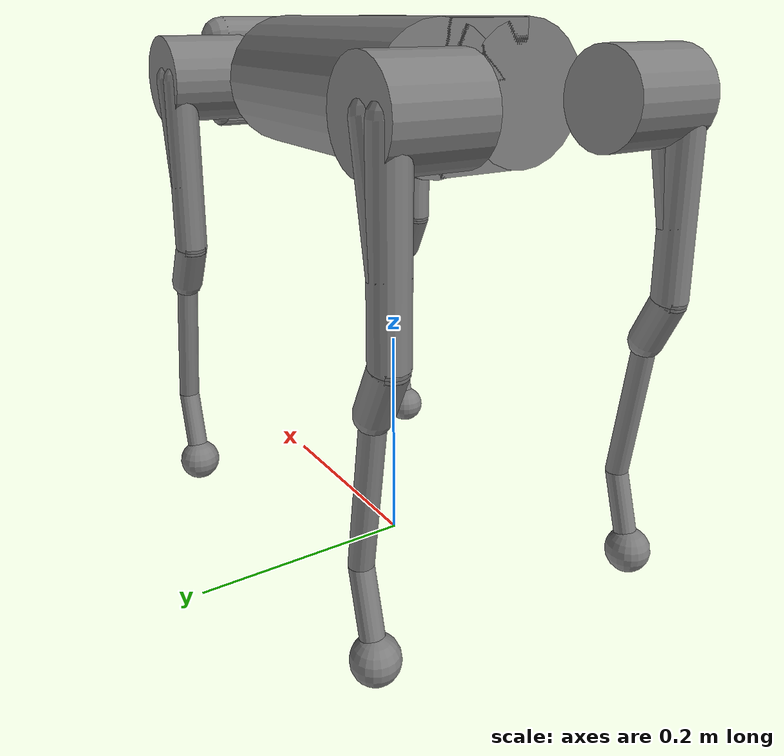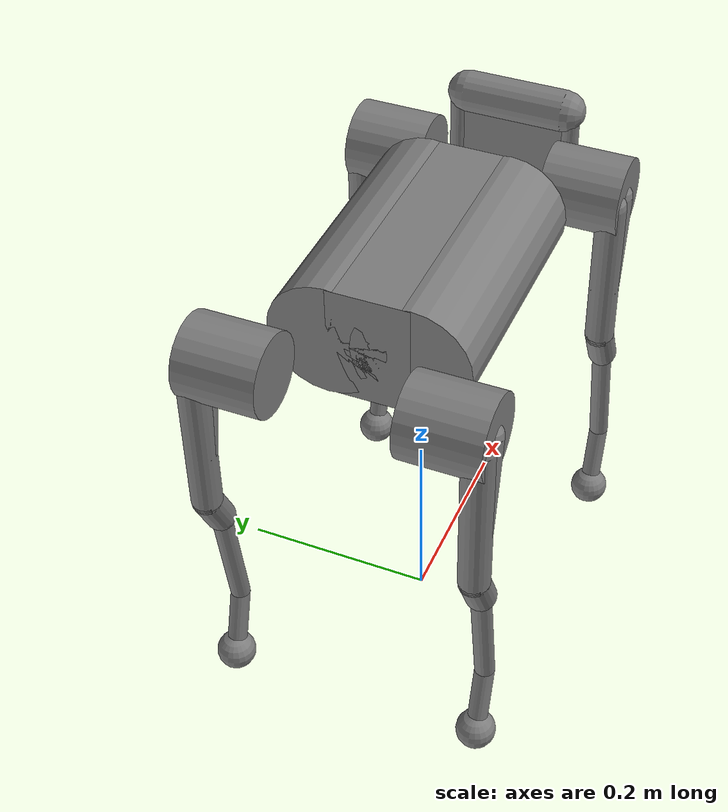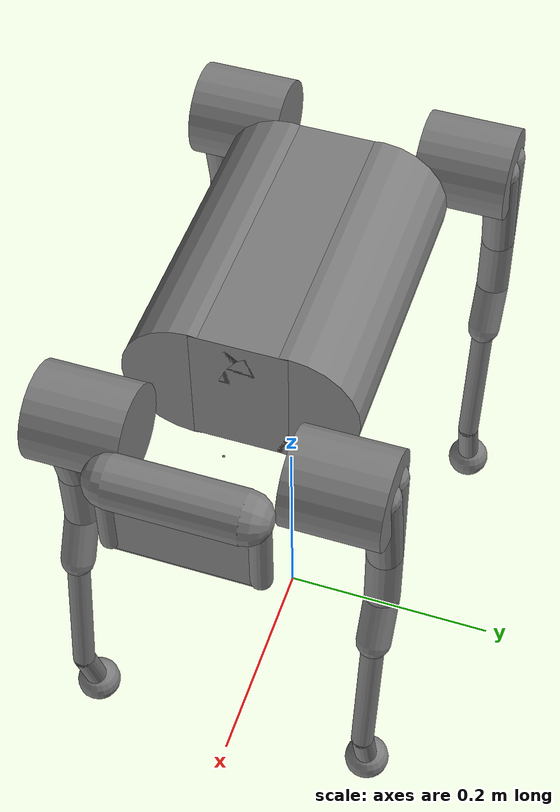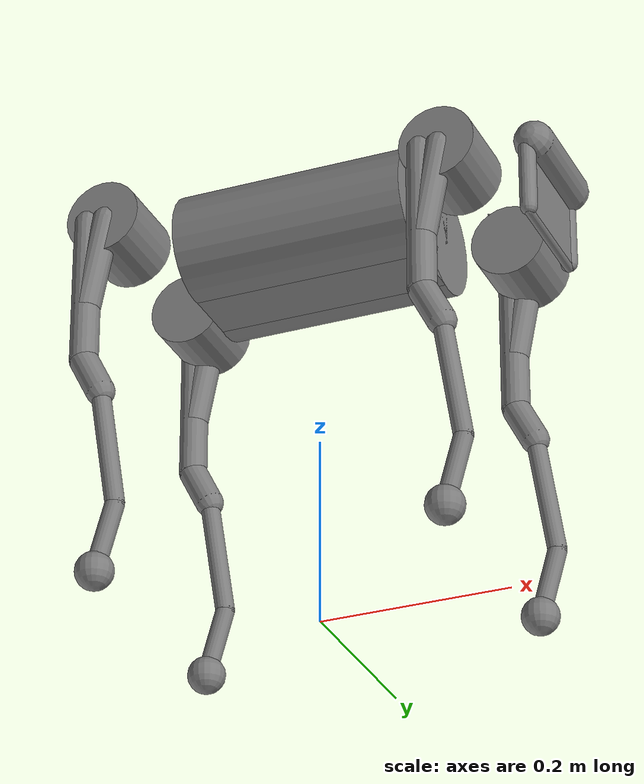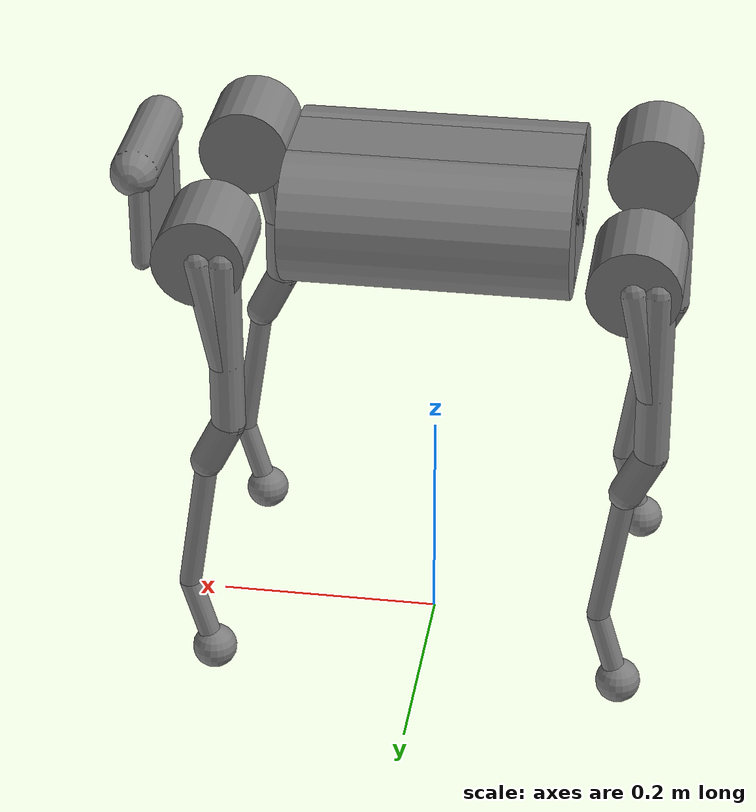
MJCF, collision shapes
<mujoco model="a1">
  <compiler angle="radian" meshdir="assets" texturedir="assets" autolimits="true"/>

  <option cone="elliptic" impratio="100"/>

  <default>
    <default class="a1">
      <geom friction="0.6" margin="0.001"/>
      <joint axis="0 1 0" damping="2" armature="0.01" frictionloss="0.2"/>
      <motor  gear="1"/>
      <default class="abduction">
        <joint axis="1 0 0" damping="1" range="-0.802851 0.802851"/>
        <motor  gear="1"/>
      </default>
      <default class="hip">
        <joint range="-1.0472 4.18879"/>
        <motor  gear="1"/>
      </default>
      <default class="knee">
        <joint range="-2.69653 -0.916298"/>
        <motor  gear="1"/>
      </default>
      <default class="visual">
        <geom type="mesh" contype="0" conaffinity="0" group="2" material="dark"/>
      </default>
      <default class="collision">
        <geom group="3" type="capsule"/>
        <default class="hip_left">
          <geom size="0.04 0.04" quat="1 1 0 0" type="cylinder" pos="0 0.055 0"/>
        </default>
        <default class="hip_right">
          <geom size="0.04 0.04" quat="1 1 0 0" type="cylinder" pos="0 -0.055 0"/>
        </default>
        <default class="thigh1">
          <geom size="0.015" fromto="-0.02 0 0 -0.02 0 -0.16"/>
        </default>
        <default class="thigh2">
          <geom size="0.015" fromto="0 0 0 -0.02 0 -0.1"/>
        </default>
        <default class="thigh3">
          <geom size="0.015" fromto="-0.02 0 -0.16 0 0 -0.2"/>
        </default>
        <default class="calf1">
          <geom size="0.01" fromto="0 0 0 0.02 0 -0.13"/>
        </default>
        <default class="calf2">
          <geom size="0.01" fromto="0.02 0 -0.13 0 0 -0.2"/>
        </default>
        <default class="foot">
          <geom type="sphere" size="0.02" pos="0 0 -0.2" priority="1" solimp="0.015 1 0.02" condim="6"
            friction="0.8 0.02 0.01"/>
        </default>
      </default>
    </default>
  </default>

  <asset>
    <material name="dark" specular="0" shininess="0.25" rgba="0.2 0.2 0.2 1"/>
    <texture type="2d" name="trunk_A1" file="trunk_A1.png"/>
    <material name="carbonfibre" texture="trunk_A1" specular="0" shininess="0.25"/>

    <mesh class="a1" file="calf.obj"/>
    <mesh class="a1" file="hip.obj"/>
    <mesh class="a1" file="thigh.obj"/>
    <mesh class="a1" file="thigh_mirror.obj"/>
    <mesh class="a1" file="trunk.obj"/>
  </asset>

  <worldbody>
    <light name="spotlight" mode="targetbodycom" target="trunk" pos="0 -1 2"/>
    <body name="trunk" pos="0 0 0.43" childclass="a1">
      <freejoint/>
      <inertial mass="4.713" pos="0 0.0041 -0.0005"
        fullinertia="0.0158533 0.0377999 0.0456542 -3.66e-05 -6.11e-05 -2.75e-05"/>
      <geom class="visual" mesh="trunk" material="carbonfibre"/>
      <geom class="collision" size="0.125 0.04 0.057" type="box"/>
      <geom class="collision" quat="1 0 1 0" pos="0 -0.04 0" size="0.058 0.125" type="cylinder"/>
      <geom class="collision" quat="1 0 1 0" pos="0 +0.04 0" size="0.058 0.125" type="cylinder"/>
      <geom class="collision" pos="0.25 0 0" size="0.005 0.06 0.05" type="box"/>
      <geom class="collision" pos="0.25 0.06 -0.01" size="0.009 0.035"/>
      <geom class="collision" pos="0.25 -0.06 -0.01" size="0.009 0.035"/>
      <geom class="collision" pos="0.25 0 -0.05" size="0.005 0.06" quat="1 1 0 0"/>
      <geom class="collision" pos="0.255 0 0.0355" size="0.021 0.052" quat="1 1 0 0"/>
      <body name="FR_hip" pos="0.183 -0.047 0">
        <inertial mass="0.696" pos="-0.003311 -0.000635 3.1e-05" quat="0.507528 0.506268 0.491507 0.494499"
          diaginertia="0.000807752 0.00055293 0.000468983"/>
        <joint class="abduction" name="FR_hip_joint"/>
        <geom class="visual" mesh="hip" quat="0 1 0 0"/>
        <geom class="hip_right"/>
        <site name="FR_hip_site" pos="0 0.055 0" size="0.001" />
        <body name="FR_thigh" pos="0 -0.08505 0">
          <inertial mass="1.013" pos="-0.003237 0.022327 -0.027326" quat="0.999125 -0.00256393 -0.0409531 -0.00806091"
            diaginertia="0.00555739 0.00513936 0.00133944"/>
          <joint class="hip" name="FR_thigh_joint"/>
          <geom class="visual" mesh="thigh_mirror"/>
          <geom class="thigh1"/>
          <geom class="thigh2"/>
          <geom class="thigh3"/>
          <body name="FR_calf" pos="0 0 -0.2">
            <inertial mass="0.226" pos="0.00472659 0 -0.131975" quat="0.706886 0.017653 0.017653 0.706886"
              diaginertia="0.00340344 0.00339393 3.54834e-05"/>
            <joint class="knee" name="FR_calf_joint"/>
            <geom class="visual" mesh="calf"/>
            <geom class="calf1"/>
            <geom class="calf2"/>
            <geom class="foot"/>
            <site name="FR_foot_site" pos="0 0 -0.2" size="0.001" />
          </body>
        </body>
      </body>
      <body name="FL_hip" pos="0.183 0.047 0">
        <inertial mass="0.696" pos="-0.003311 0.000635 3.1e-05" quat="0.494499 0.491507 0.506268 0.507528"
          diaginertia="0.000807752 0.00055293 0.000468983"/>
        <joint class="abduction" name="FL_hip_joint"/>
        <geom class="visual" mesh="hip"/>
        <geom class="hip_left"/>
        <geom class="collision" size="0.04 0.04" pos="0 0.055 0" quat="1 1 0 0" type="cylinder"/>
        <site name="FL_hip_site" pos="0 0.055 0" size="0.001" />
        <body name="FL_thigh" pos="0 0.08505 0">
          <inertial mass="1.013" pos="-0.003237 -0.022327 -0.027326" quat="0.999125 0.00256393 -0.0409531 0.00806091"
            diaginertia="0.00555739 0.00513936 0.00133944"/>
          <joint class="hip" name="FL_thigh_joint"/>
          <geom class="visual" mesh="thigh"/>
          <geom class="thigh1"/>
          <geom class="thigh2"/>
          <geom class="thigh3"/>
          <body name="FL_calf" pos="0 0 -0.2">
            <inertial mass="0.226" pos="0.00472659 0 -0.131975" quat="0.706886 0.017653 0.017653 0.706886"
              diaginertia="0.00340344 0.00339393 3.54834e-05"/>
            <joint class="knee" name="FL_calf_joint"/>
            <geom class="visual" mesh="calf"/>
            <geom class="calf1"/>
            <geom class="calf2"/>
            <geom class="foot"/>
            <site name="FL_foot_site" pos="0 0 -0.2" size="0.001" />
          </body>
        </body>
      </body>
      <body name="RR_hip" pos="-0.183 -0.047 0">
        <inertial mass="0.696" pos="0.003311 -0.000635 3.1e-05" quat="0.491507 0.494499 0.507528 0.506268"
          diaginertia="0.000807752 0.00055293 0.000468983"/>
        <joint class="abduction" name="RR_hip_joint"/>
        <geom class="visual" quat="0 0 0 -1" mesh="hip"/>
        <geom class="hip_right"/>
        <site name="RR_hip_site" pos="0 -0.055 0" size="0.001" />
        <body name="RR_thigh" pos="0 -0.08505 0">
          <inertial mass="1.013" pos="-0.003237 0.022327 -0.027326" quat="0.999125 -0.00256393 -0.0409531 -0.00806091"
            diaginertia="0.00555739 0.00513936 0.00133944"/>
          <joint class="hip" name="RR_thigh_joint"/>
          <geom class="visual" mesh="thigh_mirror"/>
          <geom class="thigh1"/>
          <geom class="thigh2"/>
          <geom class="thigh3"/>
          <body name="RR_calf" pos="0 0 -0.2">
            <inertial mass="0.226" pos="0.00472659 0 -0.131975" quat="0.706886 0.017653 0.017653 0.706886"
              diaginertia="0.00340344 0.00339393 3.54834e-05"/>
            <joint class="knee" name="RR_calf_joint"/>
            <geom class="visual" mesh="calf"/>
            <geom class="calf1"/>
            <geom class="calf2"/>
            <geom class="foot"/>
            <site name="RR_foot_site" pos="0 0 -0.2" size="0.001" />
          </body>
        </body>
      </body>
      <body name="RL_hip" pos="-0.183 0.047 0">
        <inertial mass="0.696" pos="0.003311 0.000635 3.1e-05" quat="0.506268 0.507528 0.494499 0.491507"
          diaginertia="0.000807752 0.00055293 0.000468983"/>
        <joint class="abduction" name="RL_hip_joint"/>
        <geom class="visual" quat="0 0 1 0" mesh="hip"/>
        <geom class="hip_left"/>
        <site name="RL_hip_site" pos="0 0.055 0" size="0.001" />
        <body name="RL_thigh" pos="0 0.08505 0">
          <inertial mass="1.013" pos="-0.003237 -0.022327 -0.027326" quat="0.999125 0.00256393 -0.0409531 0.00806091"
            diaginertia="0.00555739 0.00513936 0.00133944"/>
          <joint class="hip" name="RL_thigh_joint"/>
          <geom class="visual" mesh="thigh"/>
          <geom class="thigh1"/>
          <geom class="thigh2"/>
          <geom class="thigh3"/>
          <body name="RL_calf" pos="0 0 -0.2">
            <inertial mass="0.226" pos="0.00472659 0 -0.131975" quat="0.706886 0.017653 0.017653 0.706886"
              diaginertia="0.00340344 0.00339393 3.54834e-05"/>
            <joint class="knee" name="RL_calf_joint"/>
            <geom class="visual" mesh="calf"/>
            <geom class="calf1"/>
            <geom class="calf2"/>
            <geom class="foot"/>
            <site name="RL_foot_site" pos="0 0 -0.2" size="0.001" />
          </body>
        </body>
      </body>
    </body>
  </worldbody>

  <actuator>
    <motor class="abduction" name="FR_hip" joint="FR_hip_joint"/>
    <motor class="hip" name="FR_thigh" joint="FR_thigh_joint"/>
    <motor class="knee" name="FR_calf" joint="FR_calf_joint"/>
    <motor class="abduction" name="FL_hip" joint="FL_hip_joint"/>
    <motor class="hip" name="FL_thigh" joint="FL_thigh_joint"/>
    <motor class="knee" name="FL_calf" joint="FL_calf_joint"/>
    <motor class="abduction" name="RR_hip" joint="RR_hip_joint"/>
    <motor class="hip" name="RR_thigh" joint="RR_thigh_joint"/>
    <motor class="knee" name="RR_calf" joint="RR_calf_joint"/>
    <motor class="abduction" name="RL_hip" joint="RL_hip_joint"/>
    <motor class="hip" name="RL_thigh" joint="RL_thigh_joint"/>
    <motor class="knee" name="RL_calf" joint="RL_calf_joint"/>
  </actuator>

  <sensor>
    <force name="FR_foot_force" site="FR_foot_site"/>
    <force name="FL_foot_force" site="FL_foot_site"/>
    <force name="RR_foot_force" site="RR_foot_site"/>
    <force name="RL_foot_force" site="RL_foot_site"/>
  </sensor>

  <keyframe>
    <key name="home" qpos="0 0 0.27 1 0 0 0 0 0.9 -1.8 0 0.9 -1.8 0 0.9 -1.8 0 0.9 -1.8"
      ctrl="0 0.9 -1.8 0 0.9 -1.8 0 0.9 -1.8 0 0.9 -1.8"/>
  </keyframe>
</mujoco>
